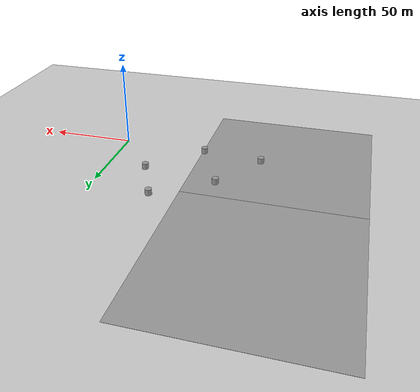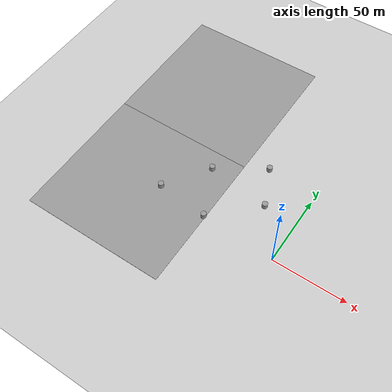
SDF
<sdf version="1.6">
 <world name="default">
  <model name="ground_plane">
   <static>1</static>
   <link name="link">
    <collision name="collision">
     <geometry><plane><normal>0 0 1</normal><size>100 100</size></plane></geometry>
     <surface>
      <contact><collide_bitmask>65535</collide_bitmask></contact>
      <friction><ode><mu>100</mu><mu2>50</mu2></ode></friction>
     </surface>
    </collision>
    <visual name="visual">
     <cast_shadows>0</cast_shadows>
     <geometry><plane><normal>0 0 1</normal><size>100 100</size></plane></geometry>
     <material>
      <script><uri>file://media/materials/scripts/gazebo.material</uri><name>Gazebo/Grey</name></script>
     </material>
    </visual>
   </link>
  </model>
  <model name="ground_plane_3">
   <static>1</static>
   <link name="link">
    <collision name="collision">
     <geometry><plane><normal>0 0 1</normal><size>100 100</size></plane></geometry>
     <surface>
      <contact><collide_bitmask>65535</collide_bitmask></contact>
      <friction><ode><mu>100</mu><mu2>50</mu2></ode></friction>
     </surface>
    </collision>
    <visual name="visual">
     <cast_shadows>0</cast_shadows>
     <geometry><plane><normal>0 0 1</normal><size>100 100</size></plane></geometry>
     <material>
      <script><uri>file://media/materials/scripts/gazebo.material</uri><name>Gazebo/Grey</name></script>
     </material>
    </visual>
   </link>
   <pose>-100 0 0 0 -0 0</pose>
  </model>
  <model name="ground_plane_5">
   <static>1</static>
   <link name="link">
    <collision name="collision">
     <geometry><plane><normal>0 0 1</normal><size>100 100</size></plane></geometry>
     <surface>
      <contact><collide_bitmask>65535</collide_bitmask></contact>
      <friction><ode><mu>100</mu><mu2>50</mu2></ode></friction>
     </surface>
    </collision>
    <visual name="visual">
     <cast_shadows>0</cast_shadows>
     <geometry><plane><normal>0 0 1</normal><size>100 100</size></plane></geometry>
     <material>
      <script><uri>file://media/materials/scripts/gazebo.material</uri><name>Gazebo/Grey</name></script>
     </material>
    </visual>
   </link>
   <pose>-100 100 0 0 -0 0</pose>
  </model>
  <model name="unit_cylinder">
   <pose>-51.2058 2.68078 1.77421 -0 -0 -8e-06</pose>
   <link name="link">
    <inertial>
     <mass>1</mass>
     <inertia><ixx>0.145833</ixx><ixy>0</ixy><ixz>0</ixz><iyy>0.145833</iyy><iyz>0</iyz><izz>0.125</izz></inertia>
    </inertial>
    <collision name="collision">
     <geometry><cylinder><radius>1.89093</radius><length>3.54843</length></cylinder></geometry>
    </collision>
    <visual name="visual">
     <geometry><cylinder><radius>1.89093</radius><length>3.54843</length></cylinder></geometry>
     <material>
      <script><name>Gazebo/Grey</name><uri>file://media/materials/scripts/gazebo.material</uri></script>
     </material>
    </visual>
   </link>
  </model>
  <model name="unit_cylinder_clone_6">
   <pose>-66.6993 36.6168 1.77421 0 -0 -1e-06</pose>
   <link name="link">
    <inertial>
     <mass>1</mass>
     <inertia><ixx>0.145833</ixx><ixy>0</ixy><ixz>0</ixz><iyy>0.145833</iyy><iyz>0</iyz><izz>0.125</izz></inertia>
    </inertial>
    <collision name="collision">
     <geometry><cylinder><radius>1.89093</radius><length>3.54843</length></cylinder></geometry>
    </collision>
    <visual name="visual">
     <geometry><cylinder><radius>1.89093</radius><length>3.54843</length></cylinder></geometry>
     <material>
      <script><name>Gazebo/Grey</name><uri>file://media/materials/scripts/gazebo.material</uri></script>
     </material>
    </visual>
   </link>
  </model>
  <model name="unit_cylinder_clone_7">
   <pose>-23.1264 30.6708 1.77422 0 -0 -1e-06</pose>
   <link name="link">
    <inertial>
     <mass>1</mass>
     <inertia><ixx>0.145833</ixx><ixy>0</ixy><ixz>0</ixz><iyy>0.145833</iyy><iyz>0</iyz><izz>0.125</izz></inertia>
    </inertial>
    <collision name="collision">
     <geometry><cylinder><radius>1.89093</radius><length>3.54843</length></cylinder></geometry>
    </collision>
    <visual name="visual">
     <geometry><cylinder><radius>1.89093</radius><length>3.54843</length></cylinder></geometry>
     <material>
      <script><name>Gazebo/Grey</name><uri>file://media/materials/scripts/gazebo.material</uri></script>
     </material>
    </visual>
   </link>
  </model>
  <model name="unit_cylinder_clone_10">
   <pose>-34.9834 57.1374 1.77421 0 -0 -5e-06</pose>
   <link name="link">
    <inertial>
     <mass>1</mass>
     <inertia><ixx>0.145833</ixx><ixy>0</ixy><ixz>0</ixz><iyy>0.145833</iyy><iyz>0</iyz><izz>0.125</izz></inertia>
    </inertial>
    <collision name="collision">
     <geometry><cylinder><radius>1.89093</radius><length>3.54843</length></cylinder></geometry>
    </collision>
    <visual name="visual">
     <geometry><cylinder><radius>1.89093</radius><length>3.54843</length></cylinder></geometry>
     <material>
      <script><name>Gazebo/Grey</name><uri>file://media/materials/scripts/gazebo.material</uri></script>
     </material>
    </visual>
   </link>
  </model>
  <model name="unit_cylinder_clone_12">
   <pose>-86.7383 6.51341 1.77422 0 0 -7e-06</pose>
   <link name="link">
    <inertial>
     <mass>1</mass>
     <inertia><ixx>0.145833</ixx><ixy>0</ixy><ixz>0</ixz><iyy>0.145833</iyy><iyz>0</iyz><izz>0.125</izz></inertia>
    </inertial>
    <collision name="collision">
     <geometry><cylinder><radius>1.89093</radius><length>3.54843</length></cylinder></geometry>
    </collision>
    <visual name="visual">
     <geometry><cylinder><radius>1.89093</radius><length>3.54843</length></cylinder></geometry>
     <material>
      <script><name>Gazebo/Grey</name><uri>file://media/materials/scripts/gazebo.material</uri></script>
     </material>
    </visual>
   </link>
  </model>
 </world>
</sdf>
